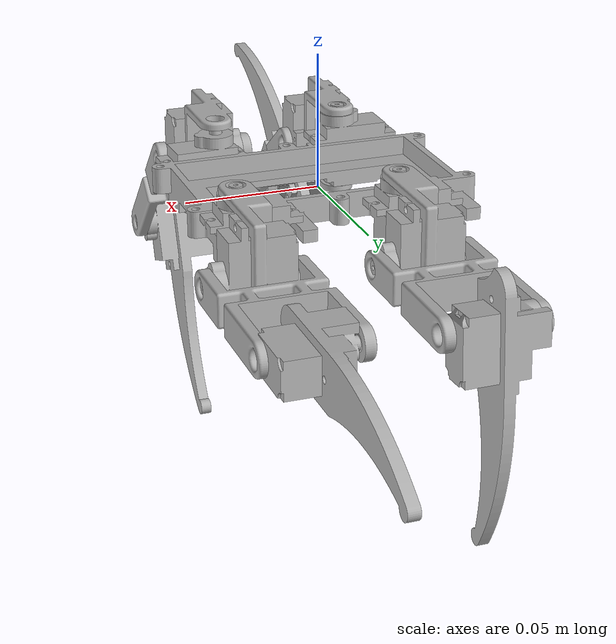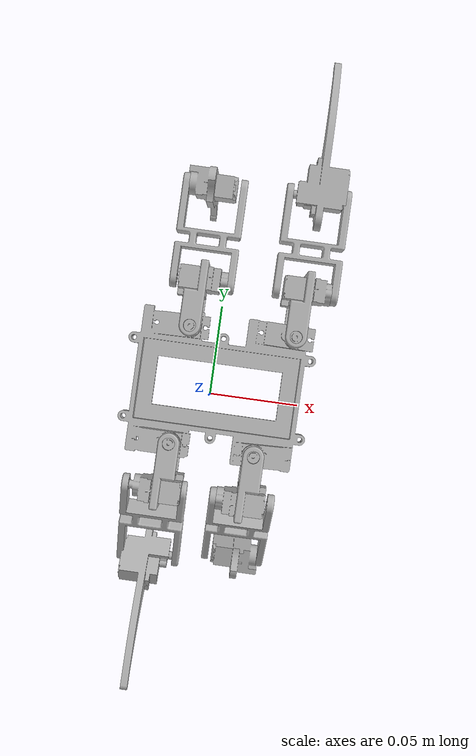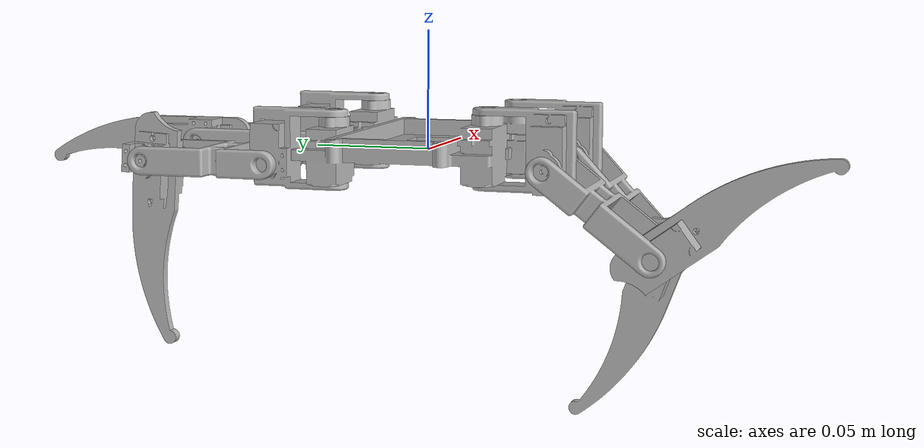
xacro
<?xml version="1.0" ?>
<robot name="Assm" xmlns:xacro="http://www.ros.org/wiki/xacro">

<xacro:include filename="$(find Assm_description)/urdf/materials.xacro" />
<xacro:include filename="$(find Assm_description)/urdf/Assm.trans" />
<xacro:include filename="$(find Assm_description)/urdf/Assm.gazebo" />
<link name="base_link">
  <inertial>
    <origin xyz="0.005450285535566075 0.0028327915449261154 0.0011676081391321141" rpy="0 0 0"/>
    <mass value="0.3857637405193081"/>
    <inertia ixx="0.000383" iyy="0.000399" izz="0.000751" ixy="-1.5e-05" iyz="-1e-06" ixz="1e-06"/>
  </inertial>
  <visual>
    <origin xyz="0 0 0" rpy="0 0 0"/>
    <geometry>
      <mesh filename="file://$(find Assm_description)/meshes/base_link.stl" scale="0.001 0.001 0.001"/>
    </geometry>
    <material name="silver"/>
  </visual>
  <collision>
    <origin xyz="0 0 0" rpy="0 0 0"/>
    <geometry>
      <mesh filename="file://$(find Assm_description)/meshes/base_link.stl" scale="0.001 0.001 0.001"/>
    </geometry>
  </collision>
</link>

<link name="limb_2_1_3">
  <inertial>
    <origin xyz="-0.017939963784019828 0.026423584252083993 4.683265387196711e-07" rpy="0 0 0"/>
    <mass value="0.057466860924570075"/>
    <inertia ixx="1.5e-05" iyy="1.3e-05" izz="2.6e-05" ixy="0.0" iyz="-0.0" ixz="0.0"/>
  </inertial>
  <visual>
    <origin xyz="-0.003869 -0.063937 0.005719" rpy="0 0 0"/>
    <geometry>
      <mesh filename="file://$(find Assm_description)/meshes/limb_2_1_3.stl" scale="0.001 0.001 0.001"/>
    </geometry>
    <material name="silver"/>
  </visual>
  <collision>
    <origin xyz="-0.003869 -0.063937 0.005719" rpy="0 0 0"/>
    <geometry>
      <mesh filename="file://$(find Assm_description)/meshes/limb_2_1_3.stl" scale="0.001 0.001 0.001"/>
    </geometry>
  </collision>
</link>

<link name="limb_1_3_3">
  <inertial>
    <origin xyz="0.016568334427794235 0.000850356744703698 -0.013045734619034697" rpy="0 0 0"/>
    <mass value="0.10238612425988404"/>
    <inertia ixx="4.4e-05" iyy="4.5e-05" izz="6e-06" ixy="0.0" iyz="0.0" ixz="0.0"/>
  </inertial>
  <visual>
    <origin xyz="0.031631 -0.118937 0.005719" rpy="0 0 0"/>
    <geometry>
      <mesh filename="file://$(find Assm_description)/meshes/limb_1_3_3.stl" scale="0.001 0.001 0.001"/>
    </geometry>
    <material name="silver"/>
  </visual>
  <collision>
    <origin xyz="0.031631 -0.118937 0.005719" rpy="0 0 0"/>
    <geometry>
      <mesh filename="file://$(find Assm_description)/meshes/limb_1_3_3.stl" scale="0.001 0.001 0.001"/>
    </geometry>
  </collision>
</link>

<link name="limb_2_1_1">
  <inertial>
    <origin xyz="0.01794053600284727 -0.01787835604374112 -0.01945673024885675" rpy="0 0 0"/>
    <mass value="0.057466860924570075"/>
    <inertia ixx="1.5e-05" iyy="2e-05" izz="1.9e-05" ixy="0.0" iyz="-7e-06" ixz="0.0"/>
  </inertial>
  <visual>
    <origin xyz="-0.008449 0.059241 0.003557" rpy="0 0 0"/>
    <geometry>
      <mesh filename="file://$(find Assm_description)/meshes/limb_2_1_1.stl" scale="0.001 0.001 0.001"/>
    </geometry>
    <material name="silver"/>
  </visual>
  <collision>
    <origin xyz="-0.008449 0.059241 0.003557" rpy="0 0 0"/>
    <geometry>
      <mesh filename="file://$(find Assm_description)/meshes/limb_2_1_1.stl" scale="0.001 0.001 0.001"/>
    </geometry>
  </collision>
</link>

<link name="limb_1_3_1">
  <inertial>
    <origin xyz="-0.016567762208992986 0.004546209816010241 -0.012258496357176497" rpy="0 0 0"/>
    <mass value="0.10238612425988404"/>
    <inertia ixx="4.4e-05" iyy="3.9e-05" izz="1.2e-05" ixy="0.0" iyz="1.4e-05" ixz="0.0"/>
  </inertial>
  <visual>
    <origin xyz="-0.043949 0.096455 0.044055" rpy="0 0 0"/>
    <geometry>
      <mesh filename="file://$(find Assm_description)/meshes/limb_1_3_1.stl" scale="0.001 0.001 0.001"/>
    </geometry>
    <material name="silver"/>
  </visual>
  <collision>
    <origin xyz="-0.043949 0.096455 0.044055" rpy="0 0 0"/>
    <geometry>
      <mesh filename="file://$(find Assm_description)/meshes/limb_1_3_1.stl" scale="0.001 0.001 0.001"/>
    </geometry>
  </collision>
</link>

<link name="limb_2_1_2">
  <inertial>
    <origin xyz="0.014940421590430016 -0.021036197637545002 -0.01599010576032387" rpy="0 0 0"/>
    <mass value="0.057466860924570075"/>
    <inertia ixx="1.5e-05" iyy="1.8e-05" izz="2.1e-05" ixy="0.0" iyz="-6e-06" ixz="0.0"/>
  </inertial>
  <visual>
    <origin xyz="0.039389 0.058331 0.003068" rpy="0 0 0"/>
    <geometry>
      <mesh filename="file://$(find Assm_description)/meshes/limb_2_1_2.stl" scale="0.001 0.001 0.001"/>
    </geometry>
    <material name="silver"/>
  </visual>
  <collision>
    <origin xyz="0.039389 0.058331 0.003068" rpy="0 0 0"/>
    <geometry>
      <mesh filename="file://$(find Assm_description)/meshes/limb_2_1_2.stl" scale="0.001 0.001 0.001"/>
    </geometry>
  </collision>
</link>

<link name="limb_1_3_2">
  <inertial>
    <origin xyz="-0.016567876621383898 -0.010533117865850233 0.007744010163671957" rpy="0 0 0"/>
    <mass value="0.10238612425988404"/>
    <inertia ixx="4.4e-05" iyy="1.8e-05" izz="3.4e-05" ixy="-0.0" iyz="1.8e-05" ixz="-0.0"/>
  </inertial>
  <visual>
    <origin xyz="0.009889 0.102118 0.036351" rpy="0 0 0"/>
    <geometry>
      <mesh filename="file://$(find Assm_description)/meshes/limb_1_3_2.stl" scale="0.001 0.001 0.001"/>
    </geometry>
    <material name="silver"/>
  </visual>
  <collision>
    <origin xyz="0.009889 0.102118 0.036351" rpy="0 0 0"/>
    <geometry>
      <mesh filename="file://$(find Assm_description)/meshes/limb_1_3_2.stl" scale="0.001 0.001 0.001"/>
    </geometry>
  </collision>
</link>

<link name="limb_2_1_4">
  <inertial>
    <origin xyz="-0.014940377518736232 0.026423646856156266 -4.305966192674933e-07" rpy="0 0 0"/>
    <mass value="0.057466860924570075"/>
    <inertia ixx="1.5e-05" iyy="1.3e-05" izz="2.6e-05" ixy="0.0" iyz="-0.0" ixz="0.0"/>
  </inertial>
  <visual>
    <origin xyz="-0.060756 -0.065467 0.003377" rpy="0 0 0"/>
    <geometry>
      <mesh filename="file://$(find Assm_description)/meshes/limb_2_1_4.stl" scale="0.001 0.001 0.001"/>
    </geometry>
    <material name="silver"/>
  </visual>
  <collision>
    <origin xyz="-0.060756 -0.065467 0.003377" rpy="0 0 0"/>
    <geometry>
      <mesh filename="file://$(find Assm_description)/meshes/limb_2_1_4.stl" scale="0.001 0.001 0.001"/>
    </geometry>
  </collision>
</link>

<link name="limb_1_3_4">
  <inertial>
    <origin xyz="0.016567920693077623 0.01307413780451154 1.9095796676761242e-05" rpy="0 0 0"/>
    <mass value="0.10238612425988404"/>
    <inertia ixx="4.4e-05" iyy="6e-06" izz="4.5e-05" ixy="-0.0" iyz="2e-06" ixz="0.0"/>
  </inertial>
  <visual>
    <origin xyz="-0.031256 -0.120467 0.003377" rpy="0 0 0"/>
    <geometry>
      <mesh filename="file://$(find Assm_description)/meshes/limb_1_3_4.stl" scale="0.001 0.001 0.001"/>
    </geometry>
    <material name="silver"/>
  </visual>
  <collision>
    <origin xyz="-0.031256 -0.120467 0.003377" rpy="0 0 0"/>
    <geometry>
      <mesh filename="file://$(find Assm_description)/meshes/limb_1_3_4.stl" scale="0.001 0.001 0.001"/>
    </geometry>
  </collision>
</link>

<link name="limb_1_1_1">
  <inertial>
    <origin xyz="-0.002315327637535468 -0.024653738379607937 -0.014940106390473835" rpy="0 0 0"/>
    <mass value="0.0923182155552708"/>
    <inertia ixx="1.4e-05" iyy="1.2e-05" izz="1e-05" ixy="-1e-06" iyz="-0.0" ixz="-0.0"/>
  </inertial>
  <visual>
    <origin xyz="-0.028896 0.031658 -0.016594" rpy="0 0 0"/>
    <geometry>
      <mesh filename="file://$(find Assm_description)/meshes/limb_1_1_1.stl" scale="0.001 0.001 0.001"/>
    </geometry>
    <material name="silver"/>
  </visual>
  <collision>
    <origin xyz="-0.028896 0.031658 -0.016594" rpy="0 0 0"/>
    <geometry>
      <mesh filename="file://$(find Assm_description)/meshes/limb_1_1_1.stl" scale="0.001 0.001 0.001"/>
    </geometry>
  </collision>
</link>

<link name="limb_1_1_3">
  <inertial>
    <origin xyz="0.0023148998563176024 0.024654295925299996 -0.017790208656825818" rpy="0 0 0"/>
    <mass value="0.0923182155552708"/>
    <inertia ixx="1.4e-05" iyy="1.2e-05" izz="1e-05" ixy="-1e-06" iyz="0.0" ixz="0.0"/>
  </inertial>
  <visual>
    <origin xyz="0.016577 -0.036354 -0.017283" rpy="0 0 0"/>
    <geometry>
      <mesh filename="file://$(find Assm_description)/meshes/limb_1_1_3.stl" scale="0.001 0.001 0.001"/>
    </geometry>
    <material name="silver"/>
  </visual>
  <collision>
    <origin xyz="0.016577 -0.036354 -0.017283" rpy="0 0 0"/>
    <geometry>
      <mesh filename="file://$(find Assm_description)/meshes/limb_1_1_3.stl" scale="0.001 0.001 0.001"/>
    </geometry>
  </collision>
</link>

<link name="limb_1_1_4">
  <inertial>
    <origin xyz="0.002314486121601317 0.024654358529365344 -0.017790088860185568" rpy="0 0 0"/>
    <mass value="0.0923182155552708"/>
    <inertia ixx="1.4e-05" iyy="1.2e-05" izz="1e-05" ixy="-1e-06" iyz="0.0" ixz="0.0"/>
  </inertial>
  <visual>
    <origin xyz="-0.04316 -0.037884 -0.019624" rpy="0 0 0"/>
    <geometry>
      <mesh filename="file://$(find Assm_description)/meshes/limb_1_1_4.stl" scale="0.001 0.001 0.001"/>
    </geometry>
    <material name="silver"/>
  </visual>
  <collision>
    <origin xyz="-0.04316 -0.037884 -0.019624" rpy="0 0 0"/>
    <geometry>
      <mesh filename="file://$(find Assm_description)/meshes/limb_1_1_4.stl" scale="0.001 0.001 0.001"/>
    </geometry>
  </collision>
</link>

<link name="limb_1_1_2">
  <inertial>
    <origin xyz="-0.0023144420499072935 -0.024654186463004508 -0.017789845863430343" rpy="0 0 0"/>
    <mass value="0.0923182155552708"/>
    <inertia ixx="1.4e-05" iyy="1.2e-05" izz="1e-05" ixy="-1e-06" iyz="-0.0" ixz="-0.0"/>
  </inertial>
  <visual>
    <origin xyz="0.018943 0.030748 -0.019933" rpy="0 0 0"/>
    <geometry>
      <mesh filename="file://$(find Assm_description)/meshes/limb_1_1_2.stl" scale="0.001 0.001 0.001"/>
    </geometry>
    <material name="silver"/>
  </visual>
  <collision>
    <origin xyz="0.018943 0.030748 -0.019933" rpy="0 0 0"/>
    <geometry>
      <mesh filename="file://$(find Assm_description)/meshes/limb_1_1_2.stl" scale="0.001 0.001 0.001"/>
    </geometry>
  </collision>
</link>

<joint name="Revolute 23" type="continuous">
  <origin xyz="0.020446 0.027583 -0.023002" rpy="0 0 0"/>
  <parent link="limb_1_1_3"/>
  <child link="limb_2_1_3"/>
  <axis xyz="1.0 0.0 -0.0"/>
</joint>

<joint name="Revolute 24" type="continuous">
  <origin xyz="-0.0355 0.055 0.0" rpy="0 0 0"/>
  <parent link="limb_2_1_3"/>
  <child link="limb_1_3_3"/>
  <axis xyz="-1.0 -0.0 0.0"/>
</joint>

<joint name="Revolute 26" type="continuous">
  <origin xyz="-0.020447 -0.027583 -0.020151" rpy="0 0 0"/>
  <parent link="limb_1_1_1"/>
  <child link="limb_2_1_1"/>
  <axis xyz="-1.0 -0.0 -0.0"/>
</joint>

<joint name="Revolute 27" type="continuous">
  <origin xyz="0.0355 -0.037214 -0.040498" rpy="0 0 0"/>
  <parent link="limb_2_1_1"/>
  <child link="limb_1_3_1"/>
  <axis xyz="1.0 0.0 0.0"/>
</joint>

<joint name="Revolute 29" type="continuous">
  <origin xyz="-0.020446 -0.027583 -0.023001" rpy="0 0 0"/>
  <parent link="limb_1_1_2"/>
  <child link="limb_2_1_2"/>
  <axis xyz="-1.0 -0.0 0.0"/>
</joint>

<joint name="Revolute 30" type="continuous">
  <origin xyz="0.0295 -0.043787 -0.033283" rpy="0 0 0"/>
  <parent link="limb_2_1_2"/>
  <child link="limb_1_3_2"/>
  <axis xyz="1.0 0.0 -0.0"/>
</joint>

<joint name="Revolute 36" type="continuous">
  <origin xyz="0.017596 0.027583 -0.023001" rpy="0 0 0"/>
  <parent link="limb_1_1_4"/>
  <child link="limb_2_1_4"/>
  <axis xyz="1.0 0.0 -0.0"/>
</joint>

<joint name="Revolute 37" type="continuous">
  <origin xyz="-0.0295 0.055 0.0" rpy="0 0 0"/>
  <parent link="limb_2_1_4"/>
  <child link="limb_1_3_4"/>
  <axis xyz="-1.0 -0.0 0.0"/>
</joint>

<joint name="Revolute 38" type="continuous">
  <origin xyz="0.028896 -0.031658 0.016594" rpy="0 0 0"/>
  <parent link="base_link"/>
  <child link="limb_1_1_1"/>
  <axis xyz="-0.0 0.0 1.0"/>
</joint>

<joint name="Revolute 39" type="continuous">
  <origin xyz="-0.016577 0.036354 0.017283" rpy="0 0 0"/>
  <parent link="base_link"/>
  <child link="limb_1_1_3"/>
  <axis xyz="0.0 -0.0 1.0"/>
</joint>

<joint name="Revolute 40" type="continuous">
  <origin xyz="0.04316 0.037884 0.019624" rpy="0 0 0"/>
  <parent link="base_link"/>
  <child link="limb_1_1_4"/>
  <axis xyz="0.0 -0.0 1.0"/>
</joint>

<joint name="Revolute 41" type="continuous">
  <origin xyz="-0.018943 -0.030748 0.019933" rpy="0 0 0"/>
  <parent link="base_link"/>
  <child link="limb_1_1_2"/>
  <axis xyz="0.0 0.0 1.0"/>
</joint>

</robot>

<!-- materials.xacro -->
<robot name="Assm" xmlns:xacro="http://www.ros.org/wiki/xacro" >

<material name="silver">
  <color rgba="0.700 0.700 0.700 1.000"/>
</material>

</robot>

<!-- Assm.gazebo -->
<robot name="Assm" xmlns:xacro="http://www.ros.org/wiki/xacro" >

<xacro:property name="body_color" value="Gazebo/Silver" />

<gazebo>
  <plugin name="control" filename="libgazebo_ros_control.so"/>
</gazebo>
<gazebo reference="base_link">
  <material>${body_color}</material>
  <mu1>0.2</mu1>
  <mu2>0.2</mu2>
  <self_collide>true</self_collide>
  <gravity>true</gravity>
</gazebo>

<gazebo reference="limb_2_1_3">
  <material>${body_color}</material>
  <mu1>0.2</mu1>
  <mu2>0.2</mu2>
  <self_collide>true</self_collide>
</gazebo>

<gazebo reference="limb_1_3_3">
  <material>${body_color}</material>
  <mu1>0.2</mu1>
  <mu2>0.2</mu2>
  <self_collide>true</self_collide>
</gazebo>

<gazebo reference="limb_2_1_1">
  <material>${body_color}</material>
  <mu1>0.2</mu1>
  <mu2>0.2</mu2>
  <self_collide>true</self_collide>
</gazebo>

<gazebo reference="limb_1_3_1">
  <material>${body_color}</material>
  <mu1>0.2</mu1>
  <mu2>0.2</mu2>
  <self_collide>true</self_collide>
</gazebo>

<gazebo reference="limb_2_1_2">
  <material>${body_color}</material>
  <mu1>0.2</mu1>
  <mu2>0.2</mu2>
  <self_collide>true</self_collide>
</gazebo>

<gazebo reference="limb_1_3_2">
  <material>${body_color}</material>
  <mu1>0.2</mu1>
  <mu2>0.2</mu2>
  <self_collide>true</self_collide>
</gazebo>

<gazebo reference="limb_2_1_4">
  <material>${body_color}</material>
  <mu1>0.2</mu1>
  <mu2>0.2</mu2>
  <self_collide>true</self_collide>
</gazebo>

<gazebo reference="limb_1_3_4">
  <material>${body_color}</material>
  <mu1>0.2</mu1>
  <mu2>0.2</mu2>
  <self_collide>true</self_collide>
</gazebo>

<gazebo reference="limb_1_1_1">
  <material>${body_color}</material>
  <mu1>0.2</mu1>
  <mu2>0.2</mu2>
  <self_collide>true</self_collide>
</gazebo>

<gazebo reference="limb_1_1_3">
  <material>${body_color}</material>
  <mu1>0.2</mu1>
  <mu2>0.2</mu2>
  <self_collide>true</self_collide>
</gazebo>

<gazebo reference="limb_1_1_4">
  <material>${body_color}</material>
  <mu1>0.2</mu1>
  <mu2>0.2</mu2>
  <self_collide>true</self_collide>
</gazebo>

<gazebo reference="limb_1_1_2">
  <material>${body_color}</material>
  <mu1>0.2</mu1>
  <mu2>0.2</mu2>
  <self_collide>true</self_collide>
</gazebo>

</robot>
